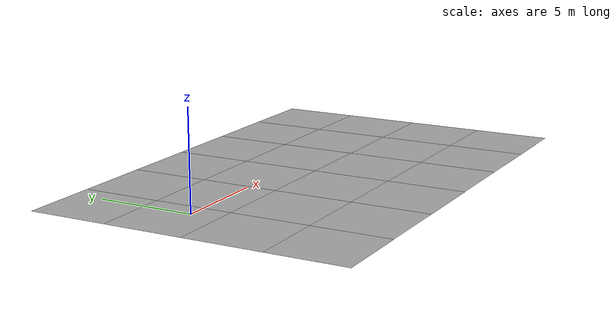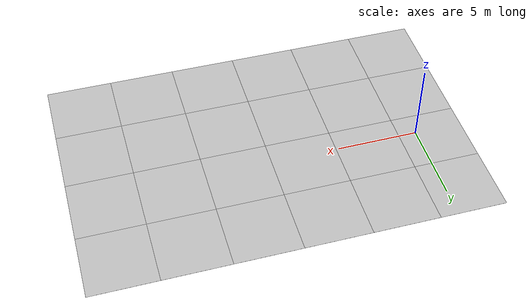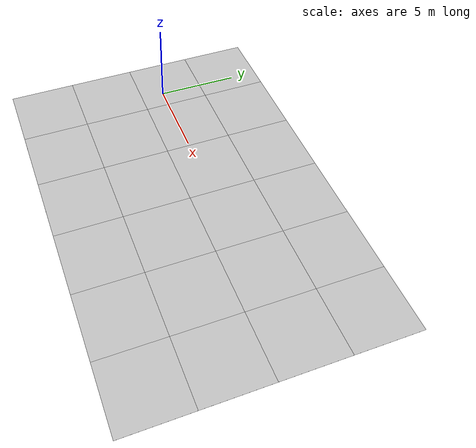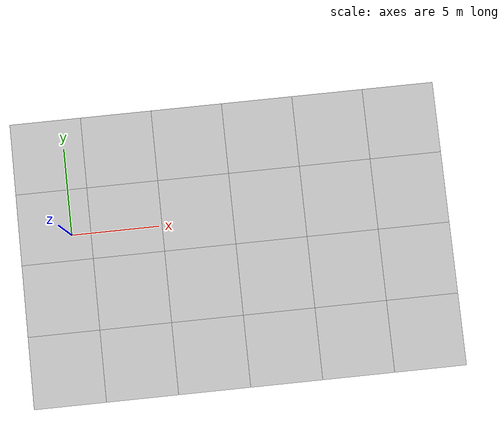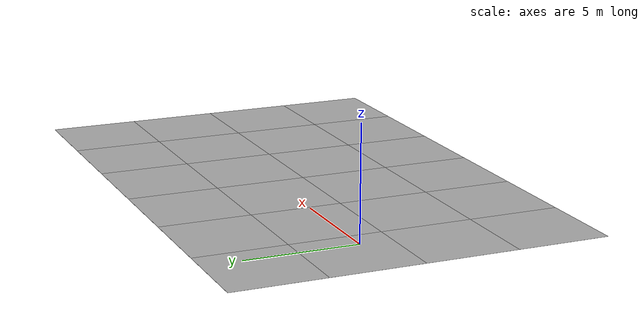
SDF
<sdf version='1.6'><world name='default'>
    <light name='sun_light' type='directional'>
      <pose frame=''>0 0 10 0 -0 0</pose>
      <diffuse>0.5 0.5 0.5 1</diffuse>
      <specular>0.1 0.1 0.1 1</specular>
      <direction>0.1 0.1 -0.9</direction>
      <attenuation>
        <range>20</range>
        <constant>0.5</constant>
        <linear>0.01</linear>
        <quadratic>0.001</quadratic>
      </attenuation>
      <cast_shadows>1</cast_shadows>
    </light>

    <model name='Tile/0-0'>
      <static>1</static>
      <link name='link'>
        <collision name='collision'>
          <geometry>
            <plane>
              <normal>0 0 1</normal>
              <size>4.096 4.096</size>
            </plane>
          </geometry>
          <surface>
            <friction>
              <ode>
                <mu>100</mu>
                <mu2>50</mu2>
              </ode>
              <torsional>
                <ode/>
              </torsional>
            </friction>
            <contact>
              <ode/>
            </contact>
            <bounce/>
          </surface>
          <max_contacts>10</max_contacts>
        </collision>
        <visual name='visual'>
          <cast_shadows>0</cast_shadows>
          <geometry>
            <plane>
              <normal>0 0 1</normal>
              <size>4.096 4.096</size>
            </plane>
          </geometry>
          <material>
            <script>
              <uri>file://materials/scripts</uri>
              <uri>file://materials/textures</uri>
              <name>Tile/5eab350b8220ac9944dbdfa4ac3288c7c17e24c3bf5df0dfcf6173d64dae00a1</name>
            </script>
          </material>
        </visual>
        <self_collide>0</self_collide>
        <enable_wind>0</enable_wind>
        <kinematic>0</kinematic>
      </link>
      <pose frame=''>-0.952 -7.601995000010415 0 0 -0 0</pose>
    </model>

    <model name='Tile/0-1'>
      <static>1</static>
      <link name='link'>
        <collision name='collision'>
          <geometry>
            <plane>
              <normal>0 0 1</normal>
              <size>4.096 4.096</size>
            </plane>
          </geometry>
          <surface>
            <friction>
              <ode>
                <mu>100</mu>
                <mu2>50</mu2>
              </ode>
              <torsional>
                <ode/>
              </torsional>
            </friction>
            <contact>
              <ode/>
            </contact>
            <bounce/>
          </surface>
          <max_contacts>10</max_contacts>
        </collision>
        <visual name='visual'>
          <cast_shadows>0</cast_shadows>
          <geometry>
            <plane>
              <normal>0 0 1</normal>
              <size>4.096 4.096</size>
            </plane>
          </geometry>
          <material>
            <script>
              <uri>file://materials/scripts</uri>
              <uri>file://materials/textures</uri>
              <name>Tile/5eab350b8220ac9944dbdfa4ac3288c7c17e24c3bf5df0dfcf6173d64dae00a1</name>
            </script>
          </material>
        </visual>
        <self_collide>0</self_collide>
        <enable_wind>0</enable_wind>
        <kinematic>0</kinematic>
      </link>
      <pose frame=''>-0.952 -3.505995000010415 0 0 -0 0</pose>
    </model>

    <model name='Tile/0-2'>
      <static>1</static>
      <link name='link'>
        <collision name='collision'>
          <geometry>
            <plane>
              <normal>0 0 1</normal>
              <size>4.096 4.096</size>
            </plane>
          </geometry>
          <surface>
            <friction>
              <ode>
                <mu>100</mu>
                <mu2>50</mu2>
              </ode>
              <torsional>
                <ode/>
              </torsional>
            </friction>
            <contact>
              <ode/>
            </contact>
            <bounce/>
          </surface>
          <max_contacts>10</max_contacts>
        </collision>
        <visual name='visual'>
          <cast_shadows>0</cast_shadows>
          <geometry>
            <plane>
              <normal>0 0 1</normal>
              <size>4.096 4.096</size>
            </plane>
          </geometry>
          <material>
            <script>
              <uri>file://materials/scripts</uri>
              <uri>file://materials/textures</uri>
              <name>Tile/608bb869dd31c6dea02369d7709844e662c52b6a694bde841f12d7cd583ad8dd</name>
            </script>
          </material>
        </visual>
        <self_collide>0</self_collide>
        <enable_wind>0</enable_wind>
        <kinematic>0</kinematic>
      </link>
      <pose frame=''>-0.952 0.5900049999895849 0 0 -0 0</pose>
    </model>

    <model name='Tile/0-3'>
      <static>1</static>
      <link name='link'>
        <collision name='collision'>
          <geometry>
            <plane>
              <normal>0 0 1</normal>
              <size>4.096 4.096</size>
            </plane>
          </geometry>
          <surface>
            <friction>
              <ode>
                <mu>100</mu>
                <mu2>50</mu2>
              </ode>
              <torsional>
                <ode/>
              </torsional>
            </friction>
            <contact>
              <ode/>
            </contact>
            <bounce/>
          </surface>
          <max_contacts>10</max_contacts>
        </collision>
        <visual name='visual'>
          <cast_shadows>0</cast_shadows>
          <geometry>
            <plane>
              <normal>0 0 1</normal>
              <size>4.096 4.096</size>
            </plane>
          </geometry>
          <material>
            <script>
              <uri>file://materials/scripts</uri>
              <uri>file://materials/textures</uri>
              <name>Tile/5eab350b8220ac9944dbdfa4ac3288c7c17e24c3bf5df0dfcf6173d64dae00a1</name>
            </script>
          </material>
        </visual>
        <self_collide>0</self_collide>
        <enable_wind>0</enable_wind>
        <kinematic>0</kinematic>
      </link>
      <pose frame=''>-0.952 4.686004999989585 0 0 -0 0</pose>
    </model>

    <model name='Tile/1-0'>
      <static>1</static>
      <link name='link'>
        <collision name='collision'>
          <geometry>
            <plane>
              <normal>0 0 1</normal>
              <size>4.096 4.096</size>
            </plane>
          </geometry>
          <surface>
            <friction>
              <ode>
                <mu>100</mu>
                <mu2>50</mu2>
              </ode>
              <torsional>
                <ode/>
              </torsional>
            </friction>
            <contact>
              <ode/>
            </contact>
            <bounce/>
          </surface>
          <max_contacts>10</max_contacts>
        </collision>
        <visual name='visual'>
          <cast_shadows>0</cast_shadows>
          <geometry>
            <plane>
              <normal>0 0 1</normal>
              <size>4.096 4.096</size>
            </plane>
          </geometry>
          <material>
            <script>
              <uri>file://materials/scripts</uri>
              <uri>file://materials/textures</uri>
              <name>Tile/5eab350b8220ac9944dbdfa4ac3288c7c17e24c3bf5df0dfcf6173d64dae00a1</name>
            </script>
          </material>
        </visual>
        <self_collide>0</self_collide>
        <enable_wind>0</enable_wind>
        <kinematic>0</kinematic>
      </link>
      <pose frame=''>3.144 -7.601995000010415 0 0 -0 0</pose>
    </model>

    <model name='Tile/1-1'>
      <static>1</static>
      <link name='link'>
        <collision name='collision'>
          <geometry>
            <plane>
              <normal>0 0 1</normal>
              <size>4.096 4.096</size>
            </plane>
          </geometry>
          <surface>
            <friction>
              <ode>
                <mu>100</mu>
                <mu2>50</mu2>
              </ode>
              <torsional>
                <ode/>
              </torsional>
            </friction>
            <contact>
              <ode/>
            </contact>
            <bounce/>
          </surface>
          <max_contacts>10</max_contacts>
        </collision>
        <visual name='visual'>
          <cast_shadows>0</cast_shadows>
          <geometry>
            <plane>
              <normal>0 0 1</normal>
              <size>4.096 4.096</size>
            </plane>
          </geometry>
          <material>
            <script>
              <uri>file://materials/scripts</uri>
              <uri>file://materials/textures</uri>
              <name>Tile/5eab350b8220ac9944dbdfa4ac3288c7c17e24c3bf5df0dfcf6173d64dae00a1</name>
            </script>
          </material>
        </visual>
        <self_collide>0</self_collide>
        <enable_wind>0</enable_wind>
        <kinematic>0</kinematic>
      </link>
      <pose frame=''>3.144 -3.505995000010415 0 0 -0 0</pose>
    </model>

    <model name='Tile/1-2'>
      <static>1</static>
      <link name='link'>
        <collision name='collision'>
          <geometry>
            <plane>
              <normal>0 0 1</normal>
              <size>4.096 4.096</size>
            </plane>
          </geometry>
          <surface>
            <friction>
              <ode>
                <mu>100</mu>
                <mu2>50</mu2>
              </ode>
              <torsional>
                <ode/>
              </torsional>
            </friction>
            <contact>
              <ode/>
            </contact>
            <bounce/>
          </surface>
          <max_contacts>10</max_contacts>
        </collision>
        <visual name='visual'>
          <cast_shadows>0</cast_shadows>
          <geometry>
            <plane>
              <normal>0 0 1</normal>
              <size>4.096 4.096</size>
            </plane>
          </geometry>
          <material>
            <script>
              <uri>file://materials/scripts</uri>
              <uri>file://materials/textures</uri>
              <name>Tile/9ad50f9933f3371c0fdc39f8fa30a84d9c821805e05268b1dfd6f0f0b068d58a</name>
            </script>
          </material>
        </visual>
        <self_collide>0</self_collide>
        <enable_wind>0</enable_wind>
        <kinematic>0</kinematic>
      </link>
      <pose frame=''>3.144 0.5900049999895849 0 0 -0 0</pose>
    </model>

    <model name='Tile/1-3'>
      <static>1</static>
      <link name='link'>
        <collision name='collision'>
          <geometry>
            <plane>
              <normal>0 0 1</normal>
              <size>4.096 4.096</size>
            </plane>
          </geometry>
          <surface>
            <friction>
              <ode>
                <mu>100</mu>
                <mu2>50</mu2>
              </ode>
              <torsional>
                <ode/>
              </torsional>
            </friction>
            <contact>
              <ode/>
            </contact>
            <bounce/>
          </surface>
          <max_contacts>10</max_contacts>
        </collision>
        <visual name='visual'>
          <cast_shadows>0</cast_shadows>
          <geometry>
            <plane>
              <normal>0 0 1</normal>
              <size>4.096 4.096</size>
            </plane>
          </geometry>
          <material>
            <script>
              <uri>file://materials/scripts</uri>
              <uri>file://materials/textures</uri>
              <name>Tile/5eab350b8220ac9944dbdfa4ac3288c7c17e24c3bf5df0dfcf6173d64dae00a1</name>
            </script>
          </material>
        </visual>
        <self_collide>0</self_collide>
        <enable_wind>0</enable_wind>
        <kinematic>0</kinematic>
      </link>
      <pose frame=''>3.144 4.686004999989585 0 0 -0 0</pose>
    </model>

    <model name='Tile/2-0'>
      <static>1</static>
      <link name='link'>
        <collision name='collision'>
          <geometry>
            <plane>
              <normal>0 0 1</normal>
              <size>4.096 4.096</size>
            </plane>
          </geometry>
          <surface>
            <friction>
              <ode>
                <mu>100</mu>
                <mu2>50</mu2>
              </ode>
              <torsional>
                <ode/>
              </torsional>
            </friction>
            <contact>
              <ode/>
            </contact>
            <bounce/>
          </surface>
          <max_contacts>10</max_contacts>
        </collision>
        <visual name='visual'>
          <cast_shadows>0</cast_shadows>
          <geometry>
            <plane>
              <normal>0 0 1</normal>
              <size>4.096 4.096</size>
            </plane>
          </geometry>
          <material>
            <script>
              <uri>file://materials/scripts</uri>
              <uri>file://materials/textures</uri>
              <name>Tile/5eab350b8220ac9944dbdfa4ac3288c7c17e24c3bf5df0dfcf6173d64dae00a1</name>
            </script>
          </material>
        </visual>
        <self_collide>0</self_collide>
        <enable_wind>0</enable_wind>
        <kinematic>0</kinematic>
      </link>
      <pose frame=''>7.24 -7.601995000010415 0 0 -0 0</pose>
    </model>

    <model name='Tile/2-1'>
      <static>1</static>
      <link name='link'>
        <collision name='collision'>
          <geometry>
            <plane>
              <normal>0 0 1</normal>
              <size>4.096 4.096</size>
            </plane>
          </geometry>
          <surface>
            <friction>
              <ode>
                <mu>100</mu>
                <mu2>50</mu2>
              </ode>
              <torsional>
                <ode/>
              </torsional>
            </friction>
            <contact>
              <ode/>
            </contact>
            <bounce/>
          </surface>
          <max_contacts>10</max_contacts>
        </collision>
        <visual name='visual'>
          <cast_shadows>0</cast_shadows>
          <geometry>
            <plane>
              <normal>0 0 1</normal>
              <size>4.096 4.096</size>
            </plane>
          </geometry>
          <material>
            <script>
              <uri>file://materials/scripts</uri>
              <uri>file://materials/textures</uri>
              <name>Tile/0f923d355d0871a1f965003ff0090958f3473de9f577e0704fa06fec7d66b9ae</name>
            </script>
          </material>
        </visual>
        <self_collide>0</self_collide>
        <enable_wind>0</enable_wind>
        <kinematic>0</kinematic>
      </link>
      <pose frame=''>7.24 -3.505995000010415 0 0 -0 0</pose>
    </model>

    <model name='Tile/2-2'>
      <static>1</static>
      <link name='link'>
        <collision name='collision'>
          <geometry>
            <plane>
              <normal>0 0 1</normal>
              <size>4.096 4.096</size>
            </plane>
          </geometry>
          <surface>
            <friction>
              <ode>
                <mu>100</mu>
                <mu2>50</mu2>
              </ode>
              <torsional>
                <ode/>
              </torsional>
            </friction>
            <contact>
              <ode/>
            </contact>
            <bounce/>
          </surface>
          <max_contacts>10</max_contacts>
        </collision>
        <visual name='visual'>
          <cast_shadows>0</cast_shadows>
          <geometry>
            <plane>
              <normal>0 0 1</normal>
              <size>4.096 4.096</size>
            </plane>
          </geometry>
          <material>
            <script>
              <uri>file://materials/scripts</uri>
              <uri>file://materials/textures</uri>
              <name>Tile/9a969cc2bd14d09fe56d820414b81056ff4507ba5693fd498f3453a606910044</name>
            </script>
          </material>
        </visual>
        <self_collide>0</self_collide>
        <enable_wind>0</enable_wind>
        <kinematic>0</kinematic>
      </link>
      <pose frame=''>7.24 0.5900049999895849 0 0 -0 0</pose>
    </model>

    <model name='Tile/2-3'>
      <static>1</static>
      <link name='link'>
        <collision name='collision'>
          <geometry>
            <plane>
              <normal>0 0 1</normal>
              <size>4.096 4.096</size>
            </plane>
          </geometry>
          <surface>
            <friction>
              <ode>
                <mu>100</mu>
                <mu2>50</mu2>
              </ode>
              <torsional>
                <ode/>
              </torsional>
            </friction>
            <contact>
              <ode/>
            </contact>
            <bounce/>
          </surface>
          <max_contacts>10</max_contacts>
        </collision>
        <visual name='visual'>
          <cast_shadows>0</cast_shadows>
          <geometry>
            <plane>
              <normal>0 0 1</normal>
              <size>4.096 4.096</size>
            </plane>
          </geometry>
          <material>
            <script>
              <uri>file://materials/scripts</uri>
              <uri>file://materials/textures</uri>
              <name>Tile/5eab350b8220ac9944dbdfa4ac3288c7c17e24c3bf5df0dfcf6173d64dae00a1</name>
            </script>
          </material>
        </visual>
        <self_collide>0</self_collide>
        <enable_wind>0</enable_wind>
        <kinematic>0</kinematic>
      </link>
      <pose frame=''>7.24 4.686004999989585 0 0 -0 0</pose>
    </model>

    <model name='Tile/3-0'>
      <static>1</static>
      <link name='link'>
        <collision name='collision'>
          <geometry>
            <plane>
              <normal>0 0 1</normal>
              <size>4.096 4.096</size>
            </plane>
          </geometry>
          <surface>
            <friction>
              <ode>
                <mu>100</mu>
                <mu2>50</mu2>
              </ode>
              <torsional>
                <ode/>
              </torsional>
            </friction>
            <contact>
              <ode/>
            </contact>
            <bounce/>
          </surface>
          <max_contacts>10</max_contacts>
        </collision>
        <visual name='visual'>
          <cast_shadows>0</cast_shadows>
          <geometry>
            <plane>
              <normal>0 0 1</normal>
              <size>4.096 4.096</size>
            </plane>
          </geometry>
          <material>
            <script>
              <uri>file://materials/scripts</uri>
              <uri>file://materials/textures</uri>
              <name>Tile/427461af1da26bac90e881c02362a5ff5611febfac7bf699765df2140e5b8904</name>
            </script>
          </material>
        </visual>
        <self_collide>0</self_collide>
        <enable_wind>0</enable_wind>
        <kinematic>0</kinematic>
      </link>
      <pose frame=''>11.336 -7.601995000010415 0 0 -0 0</pose>
    </model>

    <model name='Tile/3-1'>
      <static>1</static>
      <link name='link'>
        <collision name='collision'>
          <geometry>
            <plane>
              <normal>0 0 1</normal>
              <size>4.096 4.096</size>
            </plane>
          </geometry>
          <surface>
            <friction>
              <ode>
                <mu>100</mu>
                <mu2>50</mu2>
              </ode>
              <torsional>
                <ode/>
              </torsional>
            </friction>
            <contact>
              <ode/>
            </contact>
            <bounce/>
          </surface>
          <max_contacts>10</max_contacts>
        </collision>
        <visual name='visual'>
          <cast_shadows>0</cast_shadows>
          <geometry>
            <plane>
              <normal>0 0 1</normal>
              <size>4.096 4.096</size>
            </plane>
          </geometry>
          <material>
            <script>
              <uri>file://materials/scripts</uri>
              <uri>file://materials/textures</uri>
              <name>Tile/ebfd131786fc2ff6471c060a6b8b87219afc3ce7d9b355ab53436092b3cfddef</name>
            </script>
          </material>
        </visual>
        <self_collide>0</self_collide>
        <enable_wind>0</enable_wind>
        <kinematic>0</kinematic>
      </link>
      <pose frame=''>11.336 -3.505995000010415 0 0 -0 0</pose>
    </model>

    <model name='Tile/3-2'>
      <static>1</static>
      <link name='link'>
        <collision name='collision'>
          <geometry>
            <plane>
              <normal>0 0 1</normal>
              <size>4.096 4.096</size>
            </plane>
          </geometry>
          <surface>
            <friction>
              <ode>
                <mu>100</mu>
                <mu2>50</mu2>
              </ode>
              <torsional>
                <ode/>
              </torsional>
            </friction>
            <contact>
              <ode/>
            </contact>
            <bounce/>
          </surface>
          <max_contacts>10</max_contacts>
        </collision>
        <visual name='visual'>
          <cast_shadows>0</cast_shadows>
          <geometry>
            <plane>
              <normal>0 0 1</normal>
              <size>4.096 4.096</size>
            </plane>
          </geometry>
          <material>
            <script>
              <uri>file://materials/scripts</uri>
              <uri>file://materials/textures</uri>
              <name>Tile/5eab350b8220ac9944dbdfa4ac3288c7c17e24c3bf5df0dfcf6173d64dae00a1</name>
            </script>
          </material>
        </visual>
        <self_collide>0</self_collide>
        <enable_wind>0</enable_wind>
        <kinematic>0</kinematic>
      </link>
      <pose frame=''>11.336 0.5900049999895849 0 0 -0 0</pose>
    </model>

    <model name='Tile/3-3'>
      <static>1</static>
      <link name='link'>
        <collision name='collision'>
          <geometry>
            <plane>
              <normal>0 0 1</normal>
              <size>4.096 4.096</size>
            </plane>
          </geometry>
          <surface>
            <friction>
              <ode>
                <mu>100</mu>
                <mu2>50</mu2>
              </ode>
              <torsional>
                <ode/>
              </torsional>
            </friction>
            <contact>
              <ode/>
            </contact>
            <bounce/>
          </surface>
          <max_contacts>10</max_contacts>
        </collision>
        <visual name='visual'>
          <cast_shadows>0</cast_shadows>
          <geometry>
            <plane>
              <normal>0 0 1</normal>
              <size>4.096 4.096</size>
            </plane>
          </geometry>
          <material>
            <script>
              <uri>file://materials/scripts</uri>
              <uri>file://materials/textures</uri>
              <name>Tile/5eab350b8220ac9944dbdfa4ac3288c7c17e24c3bf5df0dfcf6173d64dae00a1</name>
            </script>
          </material>
        </visual>
        <self_collide>0</self_collide>
        <enable_wind>0</enable_wind>
        <kinematic>0</kinematic>
      </link>
      <pose frame=''>11.336 4.686004999989585 0 0 -0 0</pose>
    </model>

    <model name='Tile/4-0'>
      <static>1</static>
      <link name='link'>
        <collision name='collision'>
          <geometry>
            <plane>
              <normal>0 0 1</normal>
              <size>4.096 4.096</size>
            </plane>
          </geometry>
          <surface>
            <friction>
              <ode>
                <mu>100</mu>
                <mu2>50</mu2>
              </ode>
              <torsional>
                <ode/>
              </torsional>
            </friction>
            <contact>
              <ode/>
            </contact>
            <bounce/>
          </surface>
          <max_contacts>10</max_contacts>
        </collision>
        <visual name='visual'>
          <cast_shadows>0</cast_shadows>
          <geometry>
            <plane>
              <normal>0 0 1</normal>
              <size>4.096 4.096</size>
            </plane>
          </geometry>
          <material>
            <script>
              <uri>file://materials/scripts</uri>
              <uri>file://materials/textures</uri>
              <name>Tile/77eb40b2b1bd7d55cc2adf7bbb209f0013921afc4e6899ab14cafdf69df4ae7b</name>
            </script>
          </material>
        </visual>
        <self_collide>0</self_collide>
        <enable_wind>0</enable_wind>
        <kinematic>0</kinematic>
      </link>
      <pose frame=''>15.431999999999999 -7.601995000010415 0 0 -0 0</pose>
    </model>

    <model name='Tile/4-1'>
      <static>1</static>
      <link name='link'>
        <collision name='collision'>
          <geometry>
            <plane>
              <normal>0 0 1</normal>
              <size>4.096 4.096</size>
            </plane>
          </geometry>
          <surface>
            <friction>
              <ode>
                <mu>100</mu>
                <mu2>50</mu2>
              </ode>
              <torsional>
                <ode/>
              </torsional>
            </friction>
            <contact>
              <ode/>
            </contact>
            <bounce/>
          </surface>
          <max_contacts>10</max_contacts>
        </collision>
        <visual name='visual'>
          <cast_shadows>0</cast_shadows>
          <geometry>
            <plane>
              <normal>0 0 1</normal>
              <size>4.096 4.096</size>
            </plane>
          </geometry>
          <material>
            <script>
              <uri>file://materials/scripts</uri>
              <uri>file://materials/textures</uri>
              <name>Tile/52255a0fe0b3b6d34042afd59062ab6f9b24e4eed67ac7fe406023b4da454f5a</name>
            </script>
          </material>
        </visual>
        <self_collide>0</self_collide>
        <enable_wind>0</enable_wind>
        <kinematic>0</kinematic>
      </link>
      <pose frame=''>15.431999999999999 -3.505995000010415 0 0 -0 0</pose>
    </model>

    <model name='Tile/4-2'>
      <static>1</static>
      <link name='link'>
        <collision name='collision'>
          <geometry>
            <plane>
              <normal>0 0 1</normal>
              <size>4.096 4.096</size>
            </plane>
          </geometry>
          <surface>
            <friction>
              <ode>
                <mu>100</mu>
                <mu2>50</mu2>
              </ode>
              <torsional>
                <ode/>
              </torsional>
            </friction>
            <contact>
              <ode/>
            </contact>
            <bounce/>
          </surface>
          <max_contacts>10</max_contacts>
        </collision>
        <visual name='visual'>
          <cast_shadows>0</cast_shadows>
          <geometry>
            <plane>
              <normal>0 0 1</normal>
              <size>4.096 4.096</size>
            </plane>
          </geometry>
          <material>
            <script>
              <uri>file://materials/scripts</uri>
              <uri>file://materials/textures</uri>
              <name>Tile/5eab350b8220ac9944dbdfa4ac3288c7c17e24c3bf5df0dfcf6173d64dae00a1</name>
            </script>
          </material>
        </visual>
        <self_collide>0</self_collide>
        <enable_wind>0</enable_wind>
        <kinematic>0</kinematic>
      </link>
      <pose frame=''>15.431999999999999 0.5900049999895849 0 0 -0 0</pose>
    </model>

    <model name='Tile/4-3'>
      <static>1</static>
      <link name='link'>
        <collision name='collision'>
          <geometry>
            <plane>
              <normal>0 0 1</normal>
              <size>4.096 4.096</size>
            </plane>
          </geometry>
          <surface>
            <friction>
              <ode>
                <mu>100</mu>
                <mu2>50</mu2>
              </ode>
              <torsional>
                <ode/>
              </torsional>
            </friction>
            <contact>
              <ode/>
            </contact>
            <bounce/>
          </surface>
          <max_contacts>10</max_contacts>
        </collision>
        <visual name='visual'>
          <cast_shadows>0</cast_shadows>
          <geometry>
            <plane>
              <normal>0 0 1</normal>
              <size>4.096 4.096</size>
            </plane>
          </geometry>
          <material>
            <script>
              <uri>file://materials/scripts</uri>
              <uri>file://materials/textures</uri>
              <name>Tile/5eab350b8220ac9944dbdfa4ac3288c7c17e24c3bf5df0dfcf6173d64dae00a1</name>
            </script>
          </material>
        </visual>
        <self_collide>0</self_collide>
        <enable_wind>0</enable_wind>
        <kinematic>0</kinematic>
      </link>
      <pose frame=''>15.431999999999999 4.686004999989585 0 0 -0 0</pose>
    </model>

    <model name='Tile/5-0'>
      <static>1</static>
      <link name='link'>
        <collision name='collision'>
          <geometry>
            <plane>
              <normal>0 0 1</normal>
              <size>4.096 4.096</size>
            </plane>
          </geometry>
          <surface>
            <friction>
              <ode>
                <mu>100</mu>
                <mu2>50</mu2>
              </ode>
              <torsional>
                <ode/>
              </torsional>
            </friction>
            <contact>
              <ode/>
            </contact>
            <bounce/>
          </surface>
          <max_contacts>10</max_contacts>
        </collision>
        <visual name='visual'>
          <cast_shadows>0</cast_shadows>
          <geometry>
            <plane>
              <normal>0 0 1</normal>
              <size>4.096 4.096</size>
            </plane>
          </geometry>
          <material>
            <script>
              <uri>file://materials/scripts</uri>
              <uri>file://materials/textures</uri>
              <name>Tile/5eab350b8220ac9944dbdfa4ac3288c7c17e24c3bf5df0dfcf6173d64dae00a1</name>
            </script>
          </material>
        </visual>
        <self_collide>0</self_collide>
        <enable_wind>0</enable_wind>
        <kinematic>0</kinematic>
      </link>
      <pose frame=''>19.528 -7.601995000010415 0 0 -0 0</pose>
    </model>

    <model name='Tile/5-1'>
      <static>1</static>
      <link name='link'>
        <collision name='collision'>
          <geometry>
            <plane>
              <normal>0 0 1</normal>
              <size>4.096 4.096</size>
            </plane>
          </geometry>
          <surface>
            <friction>
              <ode>
                <mu>100</mu>
                <mu2>50</mu2>
              </ode>
              <torsional>
                <ode/>
              </torsional>
            </friction>
            <contact>
              <ode/>
            </contact>
            <bounce/>
          </surface>
          <max_contacts>10</max_contacts>
        </collision>
        <visual name='visual'>
          <cast_shadows>0</cast_shadows>
          <geometry>
            <plane>
              <normal>0 0 1</normal>
              <size>4.096 4.096</size>
            </plane>
          </geometry>
          <material>
            <script>
              <uri>file://materials/scripts</uri>
              <uri>file://materials/textures</uri>
              <name>Tile/5eab350b8220ac9944dbdfa4ac3288c7c17e24c3bf5df0dfcf6173d64dae00a1</name>
            </script>
          </material>
        </visual>
        <self_collide>0</self_collide>
        <enable_wind>0</enable_wind>
        <kinematic>0</kinematic>
      </link>
      <pose frame=''>19.528 -3.505995000010415 0 0 -0 0</pose>
    </model>

    <model name='Tile/5-2'>
      <static>1</static>
      <link name='link'>
        <collision name='collision'>
          <geometry>
            <plane>
              <normal>0 0 1</normal>
              <size>4.096 4.096</size>
            </plane>
          </geometry>
          <surface>
            <friction>
              <ode>
                <mu>100</mu>
                <mu2>50</mu2>
              </ode>
              <torsional>
                <ode/>
              </torsional>
            </friction>
            <contact>
              <ode/>
            </contact>
            <bounce/>
          </surface>
          <max_contacts>10</max_contacts>
        </collision>
        <visual name='visual'>
          <cast_shadows>0</cast_shadows>
          <geometry>
            <plane>
              <normal>0 0 1</normal>
              <size>4.096 4.096</size>
            </plane>
          </geometry>
          <material>
            <script>
              <uri>file://materials/scripts</uri>
              <uri>file://materials/textures</uri>
              <name>Tile/5eab350b8220ac9944dbdfa4ac3288c7c17e24c3bf5df0dfcf6173d64dae00a1</name>
            </script>
          </material>
        </visual>
        <self_collide>0</self_collide>
        <enable_wind>0</enable_wind>
        <kinematic>0</kinematic>
      </link>
      <pose frame=''>19.528 0.5900049999895849 0 0 -0 0</pose>
    </model>

    <model name='Tile/5-3'>
      <static>1</static>
      <link name='link'>
        <collision name='collision'>
          <geometry>
            <plane>
              <normal>0 0 1</normal>
              <size>4.096 4.096</size>
            </plane>
          </geometry>
          <surface>
            <friction>
              <ode>
                <mu>100</mu>
                <mu2>50</mu2>
              </ode>
              <torsional>
                <ode/>
              </torsional>
            </friction>
            <contact>
              <ode/>
            </contact>
            <bounce/>
          </surface>
          <max_contacts>10</max_contacts>
        </collision>
        <visual name='visual'>
          <cast_shadows>0</cast_shadows>
          <geometry>
            <plane>
              <normal>0 0 1</normal>
              <size>4.096 4.096</size>
            </plane>
          </geometry>
          <material>
            <script>
              <uri>file://materials/scripts</uri>
              <uri>file://materials/textures</uri>
              <name>Tile/5eab350b8220ac9944dbdfa4ac3288c7c17e24c3bf5df0dfcf6173d64dae00a1</name>
            </script>
          </material>
        </visual>
        <self_collide>0</self_collide>
        <enable_wind>0</enable_wind>
        <kinematic>0</kinematic>
      </link>
      <pose frame=''>19.528 4.686004999989585 0 0 -0 0</pose>
    </model>
    </world></sdf>
